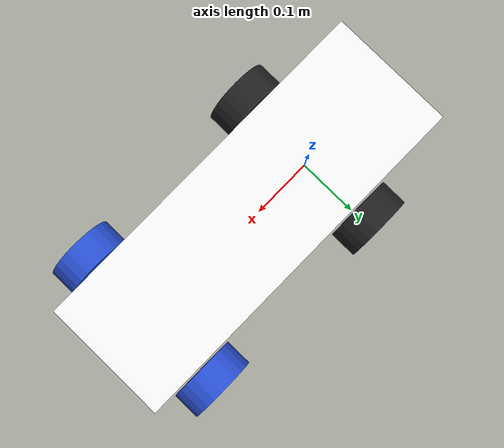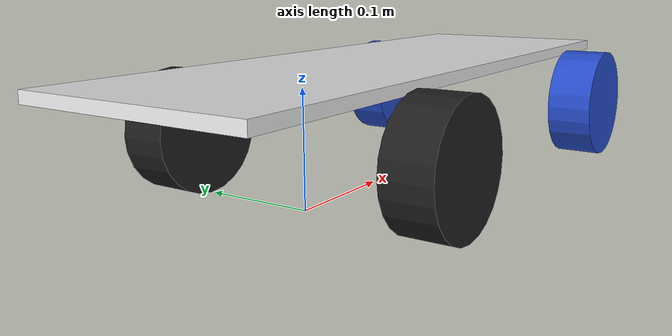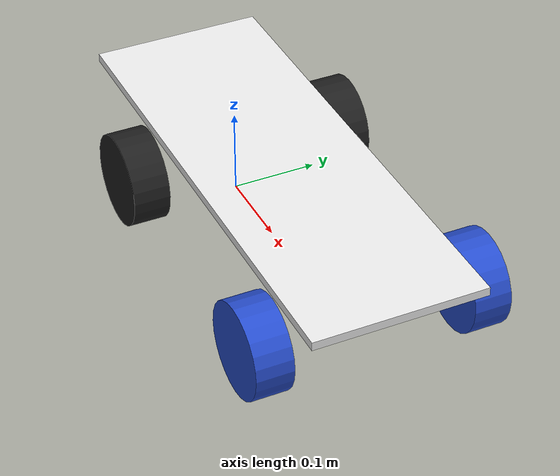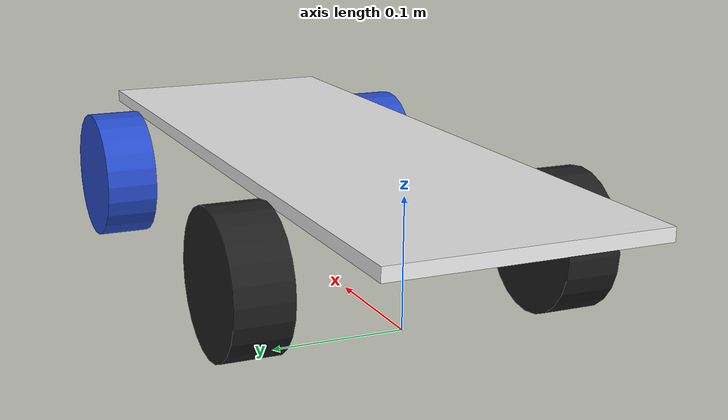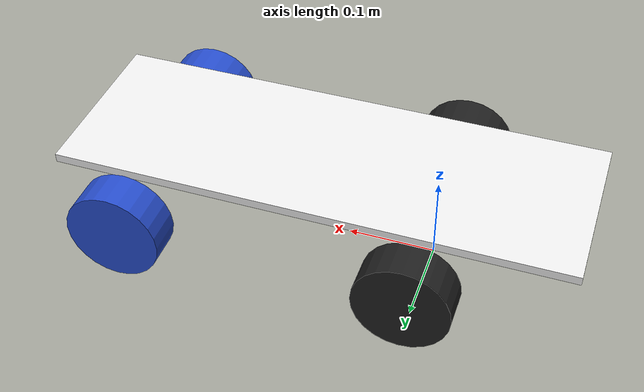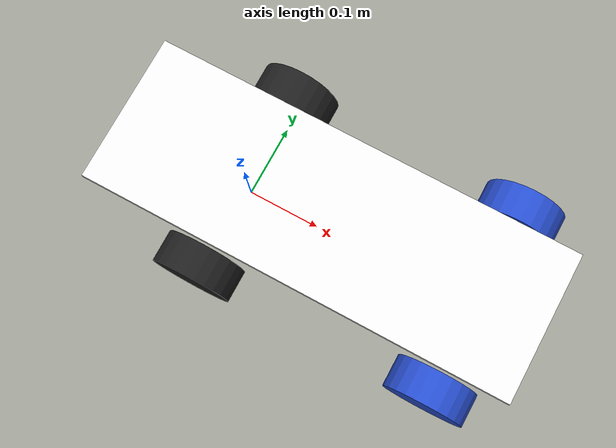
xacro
<?xml version="1.0"?>
<robot name="car" xmlns:xacro="http://www.ros.org/wiki/xacro">

  <xacro:include filename="inertial_macros_1.xacro"/>

  <!-- Base Link -->
  <link name="base_link">
    <visual>
      <geometry>
        <box size=".001 .001 .001"/>
      </geometry>
      <origin rpy="0 0 0" xyz="0 0 0"/>
    </visual>
    <collision>
      <geometry>
        <box size=".001 .001 .001"/>
      </geometry>
    </collision>
    <xacro:inertial_box mass="0.2" x=".001" y=".001" z=".001">
      <origin xyz="0 0 0" rpy="0 0 0"/>
    </xacro:inertial_box>
  </link>
  <gazebo reference="base_link">
    <material>Gazebo/White</material>
  </gazebo>

  <!-- Right Front Steering -->
  <joint name="base_link_to_right_front_steering" type="revolute">
    <parent link="base_link"/>
    <child link="right_front_steering"/>
    <origin xyz="0.326 -0.125 0.054"/>
    <axis xyz="0 0 1"/>
    <limit lower="-0.87" upper="0.87" effort="1000" velocity="1000"/>
  </joint>

  <link name="right_front_steering">
    <visual>
      <geometry>
        <box size=".001 .001 .001"/>
      </geometry>
      <origin rpy="0 0 0" xyz="0 0 0"/>
    </visual>
    <collision>
      <geometry>
        <box size=".001 .001 .001"/>
      </geometry>
    </collision>
    <xacro:inertial_box mass="0.1" x=".001" y=".001" z=".001">
      <origin xyz="0 0 0" rpy="0 0 0"/>
    </xacro:inertial_box>
  </link>
  <gazebo reference="right_front_steering">
    <material>Gazebo/Orange</material>
  </gazebo>

  <!-- Right Front Wheel -->
  <joint name="right_front_steering_to_right_front_wheel" type="continuous">
    <parent link="right_front_steering"/>
    <child link="right_front_wheel"/>
    <origin xyz="0.0 0.0 0.0"/>
    <axis xyz="0 1 0"/>
  </joint>

  <link name="right_front_wheel">
    <visual>
      <geometry>
        <cylinder length="0.043" radius="0.054"/>
      </geometry>
      <origin rpy="1.57075 0 0" xyz="0 0 0"/>
    </visual>
    <collision>
      <geometry>
        <cylinder length="0.043" radius="0.054"/>
      </geometry>
    </collision>
    <xacro:inertial_cylinder mass="0.15" length="0.043" radius="0.054">
      <origin xyz="0 0 0" rpy="0 0 0"/>
    </xacro:inertial_cylinder>
  </link>
  <gazebo reference="right_front_wheel">
    <material>Gazebo/Blue</material>
  </gazebo>

  <!-- Left Front Steering -->
  <joint name="base_link_to_left_front_steering" type="revolute">
    <parent link="base_link"/>
    <child link="left_front_steering"/>
    <origin xyz="0.326 0.125 0.054"/>
    <axis xyz="0 0 1"/>
    <limit lower="-0.87" upper="0.87" effort="1000" velocity="1000"/>
  </joint>

  <link name="left_front_steering">
    <visual>
      <geometry>
        <box size=".001 .001 .001"/>
      </geometry>
      <origin rpy="0 0 0" xyz="0 0 0"/>
    </visual>
    <collision>
      <geometry>
        <box size=".001 .001 .001"/>
      </geometry>
    </collision>
    <xacro:inertial_box mass="0.1" x=".001" y=".001" z=".001">
      <origin xyz="0 0 0" rpy="0 0 0"/>
    </xacro:inertial_box>
  </link>
  <gazebo reference="left_front_steering">
    <material>Gazebo/Orange</material>
  </gazebo>

  <!-- Left Front Wheel -->
  <joint name="left_front_steering_to_left_front_wheel" type="continuous">
    <parent link="left_front_steering"/>
    <child link="left_front_wheel"/>
    <origin xyz="0.0 0.0 0.0"/>
    <axis xyz="0 1 0"/>
  </joint>

  <link name="left_front_wheel">
    <visual>
      <geometry>
        <cylinder length="0.043" radius="0.054"/>
      </geometry>
      <origin rpy="1.57075 0 0" xyz="0 0 0"/>
    </visual>
    <collision>
      <geometry>
        <cylinder length="0.043" radius="0.054"/>
      </geometry>
    </collision>
    <xacro:inertial_cylinder mass="0.15" length="0.043" radius="0.054">
      <origin xyz="0 0 0" rpy="0 0 0"/>
    </xacro:inertial_cylinder>
  </link>
  <gazebo reference="left_front_wheel">
    <material>Gazebo/Blue</material>
  </gazebo>

  <!-- Body -->
  <joint name="base_link_to_body" type="revolute">
    <parent link="base_link"/>
    <child link="body"/>
    <origin xyz="0 0 0.054"/>
    <axis xyz="0 1 0"/>
    <limit lower="-0.065" upper="0.065" effort="1000" velocity="1000"/>
  </joint>

  <link name="body">
    <visual>
      <geometry>
        <box size="0.58 0.2 0.01"/>
      </geometry>
      <origin rpy="0 0 0" xyz="0.12 0 0.054"/>
    </visual>
    <collision>
      <geometry>
        <box size="0.58 0.2 0.01"/>
      </geometry>
    </collision>
    <xacro:inertial_box mass="0.8" x="0.58" y="0.2" z="0.01">
      <origin xyz="0 0 0" rpy="0 0 0"/>
    </xacro:inertial_box>
  </link>
  <gazebo reference="body">
    <material>Gazebo/White</material>
  </gazebo>

  <!-- Rear Wheels -->
  <joint name="body_to_right_rear_wheel" type="continuous">
    <parent link="body"/>
    <child link="right_rear_wheel"/>
    <origin xyz="0 -0.125 0.0"/>
    <axis xyz="0 1 0"/>
  </joint>

  <link name="right_rear_wheel">
    <visual>
      <geometry>
        <cylinder length="0.043" radius="0.054"/>
      </geometry>
      <origin rpy="1.57075 0 0" xyz="0 0 0"/>
    </visual>
    <collision>
      <geometry>
        <cylinder length="0.043" radius="0.054"/>
      </geometry>
    </collision>
    <xacro:inertial_cylinder mass="0.15" length="0.043" radius="0.054">
      <origin xyz="0 0 0" rpy="0 0 0"/>
    </xacro:inertial_cylinder>
  </link>
  <gazebo reference="right_rear_wheel">
    <material>Gazebo/Black</material>
  </gazebo>

  <joint name="body_to_left_rear_wheel" type="continuous">
    <parent link="body"/>
    <child link="left_rear_wheel"/>
    <origin xyz="0 0.125 0.0"/>
    <axis xyz="0 1 0"/>
  </joint>

  <link name="left_rear_wheel">
    <visual>
      <geometry>
        <cylinder length="0.043" radius="0.054"/>
      </geometry>
      <origin rpy="1.57075 0 0" xyz="0 0 0"/>
    </visual>
    <collision>
      <geometry>
        <cylinder length="0.043" radius="0.054"/>
      </geometry>
    </collision>
    <xacro:inertial_cylinder mass="0.15" length="0.043" radius="0.054">
      <origin xyz="0 0 0" rpy="0 0 0"/>
    </xacro:inertial_cylinder>
  </link>
  <gazebo reference="left_rear_wheel">
    <material>Gazebo/Black</material>
  </gazebo>

</robot>
